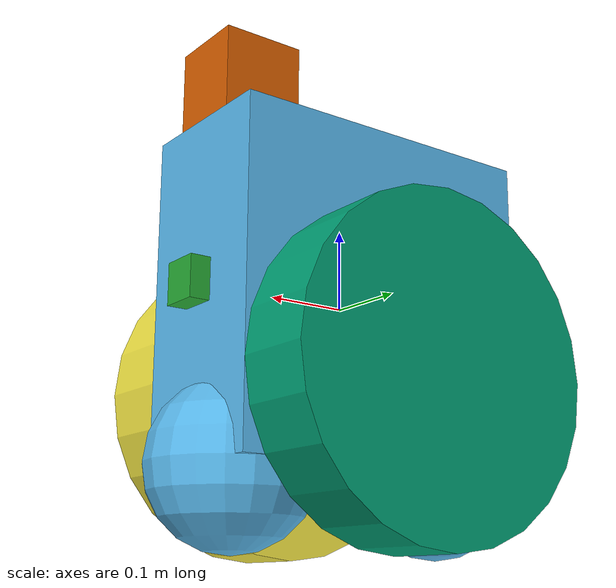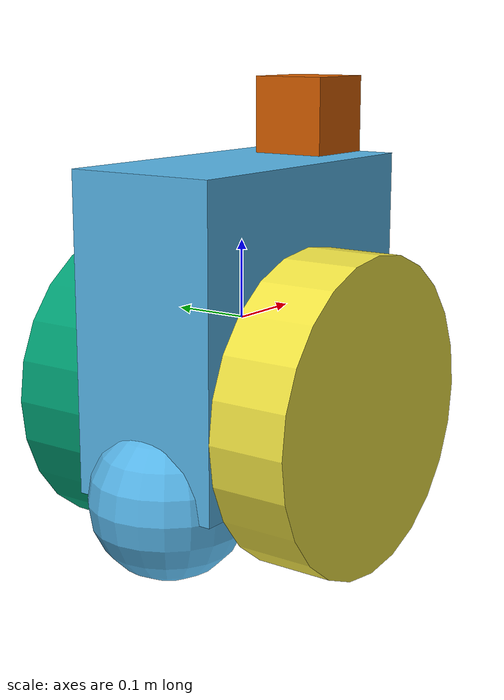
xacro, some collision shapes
<?xml version='1.0'?>

<robot name="kevin_bot" xmlns:xacro="http://www.ros.org/wiki/xacro">

  <xacro:include filename="$(find udacity_bot)/urdf/kevin_bot.gazebo" />

  <link name="robot_footprint"></link>

  <joint name="robot_footprint_joint" type="fixed">
    <origin xyz="0 0 0" rpy="0 0 0" />
    <parent link="robot_footprint"/>
    <child link="chassis" />
  </joint>

  <link name='chassis'>
    <pose>0 0 0.1 0 0 0</pose>

    <inertial>
      <mass value="15.0"/>
      <origin xyz="0.0 0 0" rpy=" 0 0 0"/>
      <inertia
          ixx="0.1" ixy="0" ixz="0"
          iyy="0.1" iyz="0"
          izz="0.1"
      />
    </inertial>

    <collision name='collision'>
      <origin xyz="0 0 0" rpy=" 0 0 0"/>
      <geometry>
        <box size=".4 .2 .4"/>
      </geometry>
    </collision>

    <visual name='chassis_visual'>
      <origin xyz="0 0 0" rpy=" 0 0 0"/>
      <geometry>
        <box size=".4 .2 .4"/>
      </geometry>
    </visual>

    <collision name='back_caster_collision'>
      <origin xyz="-0.15 0 -0.2" rpy=" 0 0 0"/>
      <geometry>
        <sphere radius="0.0999"/>
      </geometry>
    </collision>

    <visual name='back_caster_visual'>
      <origin xyz="-0.15 0 -0.2" rpy=" 0 0 0"/>
      <geometry>
        <sphere radius="0.1"/>
      </geometry>
    </visual>

    <collision name='front_caster_collision'>
      <origin xyz="0.15 0 -0.2" rpy=" 0 0 0"/>
      <geometry>
        <sphere radius="0.0999"/>
      </geometry>
    </collision>

    <visual name='front_caster_visual'>
      <origin xyz="0.15 0 -0.2" rpy=" 0 0 0"/>
      <geometry>
        <sphere radius="0.1"/>
      </geometry>
    </visual>

  </link>

  <link name='left_wheel'>
    <inertial>
      <mass value="20"/>
      <origin xyz="0 0 0" rpy=" 0 1.5707 1.5707"/>
      <inertia
          ixx="0.22" ixy="0" ixz="0"
          iyy="0.4" iyz="0"
          izz="0.22"
      />
    </inertial>

    <collision>
      <origin xyz="0 0 0" rpy=" 0 1.5707 1.5707"/>
      <geometry>
        <cylinder radius="0.2" length="0.1"/>
      </geometry>
    </collision>

    <visual>
      <origin xyz="0 0 0" rpy=" 0 1.5707 1.5707"/>
      <geometry>
        <cylinder radius="0.2" length="0.1"/>
      </geometry>
    </visual>

  </link>

  <link name='right_wheel'>
    <inertial>
      <mass value="20"/>
      <origin xyz="0 0 0" rpy=" 0 1.5707 1.5707"/>
      <inertia
          ixx="0.22" ixy="0" ixz="0"
          iyy="0.4" iyz="0"
          izz="0.22"
      />
    </inertial>

    <collision>
      <origin xyz="0 0 0" rpy=" 0 1.5707 1.5707"/>
      <geometry>
        <cylinder radius="0.2" length="0.1"/>
      </geometry>
    </collision>

    <visual>
      <origin xyz="0 0 0" rpy=" 0 1.5707 1.5707"/>
      <geometry>
        <cylinder radius="0.2" length="0.1"/>
      </geometry>
    </visual>

  </link>

  <joint type="continuous" name="left_wheel_hinge">
      <origin xyz="0 0.15 -0.1" rpy="0 0 0"/>
      <child link="left_wheel"/>
      <parent link="chassis"/>
      <axis xyz="0 1 0" rpy="0 0 0"/>
      <limit effort="10000" velocity="1000"/>
      <dynamics damping="1.0" friction="1.0"/>
    </joint>

  <joint type="continuous" name="right_wheel_hinge">
      <origin xyz="0 -0.15 -0.1" rpy="0 0 0"/>
      <child link="right_wheel"/>
      <parent link="chassis"/>
      <axis xyz="0 1 0" rpy="0 0 0"/>
      <limit effort="10000" velocity="1000"/>
      <dynamics damping="1.0" friction="1.0"/>
    </joint>

  <link name='camera'>
    <inertial>
      <mass value="0.1"/>
      <origin xyz="0 0 0" rpy="0 0 0"/>
      <inertia
        ixx="1e-6" ixy="0" ixz="0"
        iyy="1e-6" iyz="0"
        izz="1e-6"
      />
    </inertial>
    <visual>
      <origin xyz="0 0 0" rpy="0 0 0"/>
      <geometry>
        <box size="0.05 0.05 0.05"/>
      </geometry>
    </visual>
    <collision>
      <origin xyz="0 0 0" rpy="0 0 0"/>
      <geometry>
        <box size="0.05 0.05 0.05"/>
      </geometry>
    </collision>
  </link>

  <joint type="fixed" name="camera_joint">
    <origin xyz="0.2 0 0" rpy="0 0 0"/>
    <child link="camera"/>
    <parent link="chassis"/>
  </joint>

  <link name='hokuyo'>
    <inertial>
      <mass value="0.1"/>
      <origin xyz="0 0 0" rpy="0 0 0"/>
      <inertia
        ixx="1e-6" ixy="0" ixz="0"
        iyy="1e-6" iyz="0"
        izz="1e-6"
      />
    </inertial>
    <visual>
      <origin xyz="0 0 0" rpy="0 0 0"/>
      <geometry>
        <mesh filename="package://udacity_bot/meshes/hokuyo.dae"/>
      </geometry>
    </visual>
    <collision>
      <origin xyz="0 0 0" rpy="0 0 0"/>
      <geometry>
        <box size="0.1 0.1 0.1"/>
      </geometry>
    </collision>
  </link>

  <joint type="fixed" name="hokuyo_joint">
    <origin xyz="0.15 0 0.25" rpy="0 0 0"/>
    <child link="hokuyo"/>
    <parent link="chassis"/>
  </joint>
</robot>
